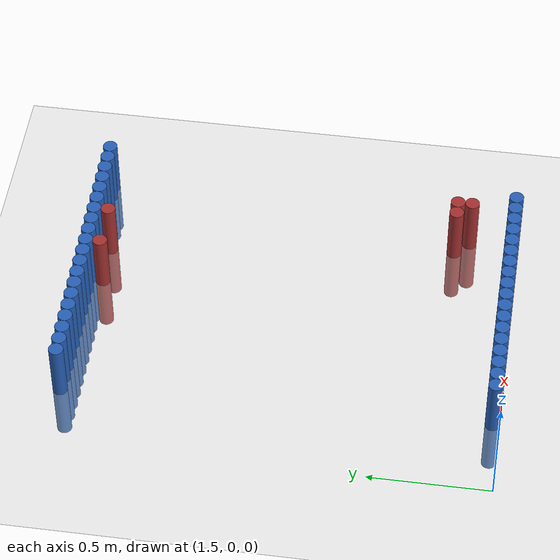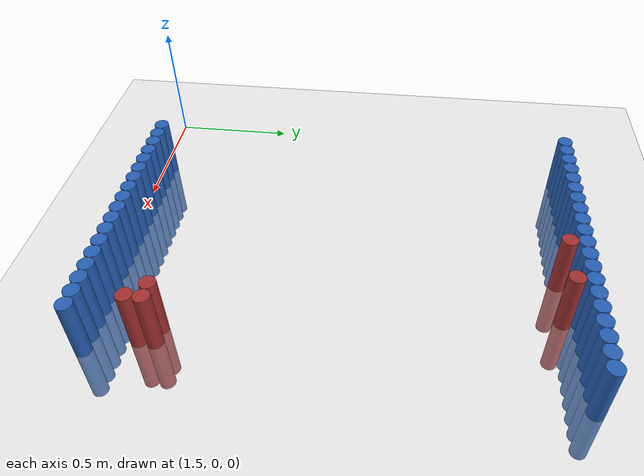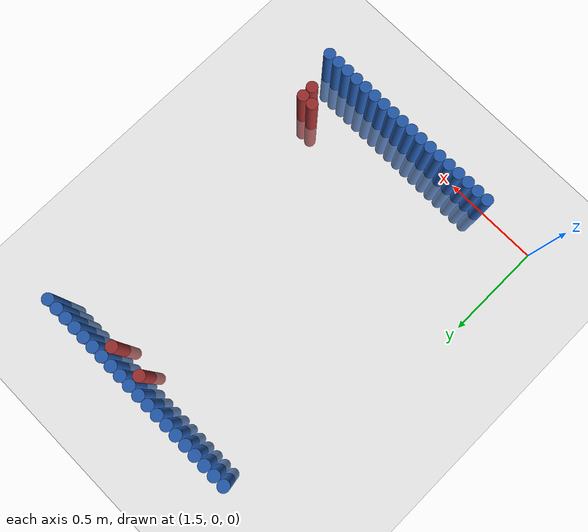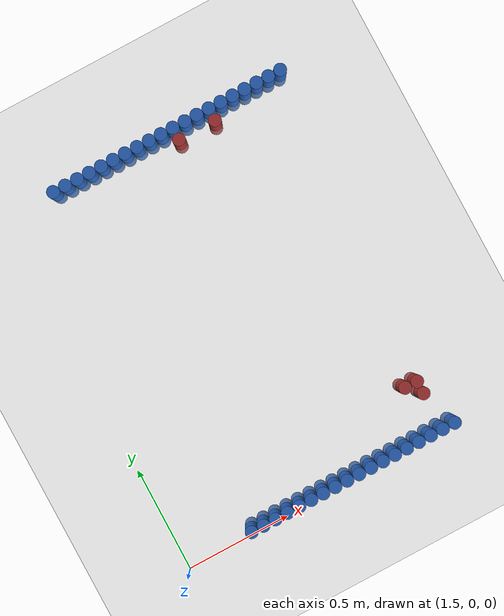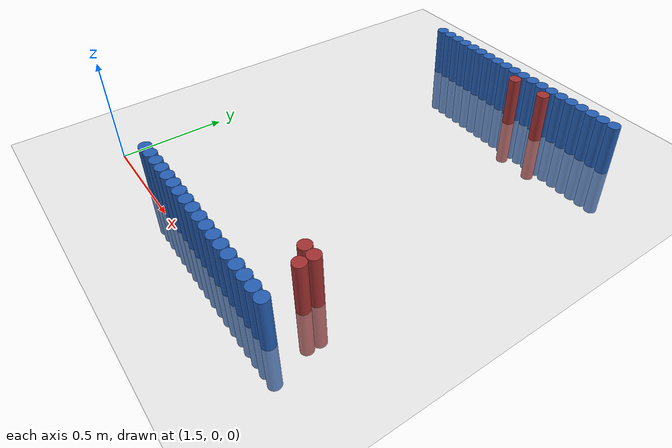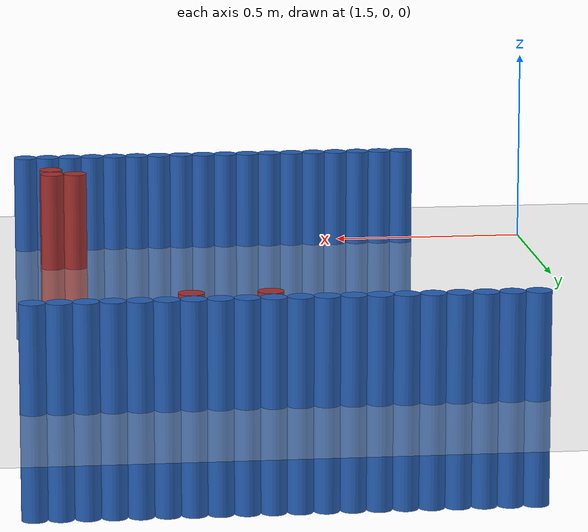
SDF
<sdf version="1.6">
 <world name="default">
  <model name="ground_plane">
   <static>1</static>
   <link name="link">
    <collision name="collision">
     <geometry><plane><normal>0 0 1</normal><size>100 100</size></plane></geometry>
     <surface><friction><ode><mu>100</mu><mu2>50</mu2></ode></friction></surface>
    </collision>
    <visual name="visual">
     <cast_shadows>0</cast_shadows>
     <geometry><plane><normal>0 0 1</normal><size>100 100</size></plane></geometry>
     <material>
      <script><uri>file://media/materials/scripts/gazebo.material</uri><name>Gazebo/Grey</name></script>
     </material>
    </visual>
   </link>
  </model>
  <model name="unit_cylinder_86">
   <static>1</static>
   <pose>1.770000 1.770000 0.000000 0.000000 0.000000 0.000000</pose>
   <link name="link">
    <inertial>
     <mass>1</mass>
     <inertia><ixx>0.145833</ixx><ixy>0</ixy><ixz>0</ixz><iyy>0.145833</iyy><iyz>0</iyz><izz>0.125</izz></inertia>
    </inertial>
    <collision name="collision">
     <geometry><cylinder><radius>0.030000</radius><length>0.5</length></cylinder></geometry>
    </collision>
    <visual name="visual">
     <geometry><cylinder><radius>0.030000</radius><length>0.5</length></cylinder></geometry>
     <material>
      <ambient>0.152000 0.379000 0.720000 1</ambient>
      <diffuse>0.152000 0.379000 0.720000 1</diffuse>
     </material>
     <material>
      <script><name>Gazebo/Grey</name><uri>file://media/materials/scripts/gazebo.material</uri></script>
     </material>
    </visual>
   </link>
  </model>
  <model name="unit_cylinder_87">
   <static>1</static>
   <pose>1.830000 0.030000 0.000000 0.000000 0.000000 0.000000</pose>
   <link name="link">
    <inertial>
     <mass>1</mass>
     <inertia><ixx>0.145833</ixx><ixy>0</ixy><ixz>0</ixz><iyy>0.145833</iyy><iyz>0</iyz><izz>0.125</izz></inertia>
    </inertial>
    <collision name="collision">
     <geometry><cylinder><radius>0.030000</radius><length>0.5</length></cylinder></geometry>
    </collision>
    <visual name="visual">
     <geometry><cylinder><radius>0.030000</radius><length>0.5</length></cylinder></geometry>
     <material>
      <ambient>0.152000 0.379000 0.720000 1</ambient>
      <diffuse>0.152000 0.379000 0.720000 1</diffuse>
     </material>
     <material>
      <script><name>Gazebo/Grey</name><uri>file://media/materials/scripts/gazebo.material</uri></script>
     </material>
    </visual>
   </link>
  </model>
  <model name="unit_cylinder_88">
   <static>1</static>
   <pose>1.830000 1.770000 0.000000 0.000000 0.000000 0.000000</pose>
   <link name="link">
    <inertial>
     <mass>1</mass>
     <inertia><ixx>0.145833</ixx><ixy>0</ixy><ixz>0</ixz><iyy>0.145833</iyy><iyz>0</iyz><izz>0.125</izz></inertia>
    </inertial>
    <collision name="collision">
     <geometry><cylinder><radius>0.030000</radius><length>0.5</length></cylinder></geometry>
    </collision>
    <visual name="visual">
     <geometry><cylinder><radius>0.030000</radius><length>0.5</length></cylinder></geometry>
     <material>
      <ambient>0.152000 0.379000 0.720000 1</ambient>
      <diffuse>0.152000 0.379000 0.720000 1</diffuse>
     </material>
     <material>
      <script><name>Gazebo/Grey</name><uri>file://media/materials/scripts/gazebo.material</uri></script>
     </material>
    </visual>
   </link>
  </model>
  <model name="unit_cylinder_89">
   <static>1</static>
   <pose>1.890000 0.030000 0.000000 0.000000 0.000000 0.000000</pose>
   <link name="link">
    <inertial>
     <mass>1</mass>
     <inertia><ixx>0.145833</ixx><ixy>0</ixy><ixz>0</ixz><iyy>0.145833</iyy><iyz>0</iyz><izz>0.125</izz></inertia>
    </inertial>
    <collision name="collision">
     <geometry><cylinder><radius>0.030000</radius><length>0.5</length></cylinder></geometry>
    </collision>
    <visual name="visual">
     <geometry><cylinder><radius>0.030000</radius><length>0.5</length></cylinder></geometry>
     <material>
      <ambient>0.152000 0.379000 0.720000 1</ambient>
      <diffuse>0.152000 0.379000 0.720000 1</diffuse>
     </material>
     <material>
      <script><name>Gazebo/Grey</name><uri>file://media/materials/scripts/gazebo.material</uri></script>
     </material>
    </visual>
   </link>
  </model>
  <model name="unit_cylinder_90">
   <static>1</static>
   <pose>1.890000 1.770000 0.000000 0.000000 0.000000 0.000000</pose>
   <link name="link">
    <inertial>
     <mass>1</mass>
     <inertia><ixx>0.145833</ixx><ixy>0</ixy><ixz>0</ixz><iyy>0.145833</iyy><iyz>0</iyz><izz>0.125</izz></inertia>
    </inertial>
    <collision name="collision">
     <geometry><cylinder><radius>0.030000</radius><length>0.5</length></cylinder></geometry>
    </collision>
    <visual name="visual">
     <geometry><cylinder><radius>0.030000</radius><length>0.5</length></cylinder></geometry>
     <material>
      <ambient>0.152000 0.379000 0.720000 1</ambient>
      <diffuse>0.152000 0.379000 0.720000 1</diffuse>
     </material>
     <material>
      <script><name>Gazebo/Grey</name><uri>file://media/materials/scripts/gazebo.material</uri></script>
     </material>
    </visual>
   </link>
  </model>
  <model name="unit_cylinder_91">
   <static>1</static>
   <pose>1.950000 0.030000 0.000000 0.000000 0.000000 0.000000</pose>
   <link name="link">
    <inertial>
     <mass>1</mass>
     <inertia><ixx>0.145833</ixx><ixy>0</ixy><ixz>0</ixz><iyy>0.145833</iyy><iyz>0</iyz><izz>0.125</izz></inertia>
    </inertial>
    <collision name="collision">
     <geometry><cylinder><radius>0.030000</radius><length>0.5</length></cylinder></geometry>
    </collision>
    <visual name="visual">
     <geometry><cylinder><radius>0.030000</radius><length>0.5</length></cylinder></geometry>
     <material>
      <ambient>0.152000 0.379000 0.720000 1</ambient>
      <diffuse>0.152000 0.379000 0.720000 1</diffuse>
     </material>
     <material>
      <script><name>Gazebo/Grey</name><uri>file://media/materials/scripts/gazebo.material</uri></script>
     </material>
    </visual>
   </link>
  </model>
  <model name="unit_cylinder_92">
   <static>1</static>
   <pose>1.950000 1.770000 0.000000 0.000000 0.000000 0.000000</pose>
   <link name="link">
    <inertial>
     <mass>1</mass>
     <inertia><ixx>0.145833</ixx><ixy>0</ixy><ixz>0</ixz><iyy>0.145833</iyy><iyz>0</iyz><izz>0.125</izz></inertia>
    </inertial>
    <collision name="collision">
     <geometry><cylinder><radius>0.030000</radius><length>0.5</length></cylinder></geometry>
    </collision>
    <visual name="visual">
     <geometry><cylinder><radius>0.030000</radius><length>0.5</length></cylinder></geometry>
     <material>
      <ambient>0.152000 0.379000 0.720000 1</ambient>
      <diffuse>0.152000 0.379000 0.720000 1</diffuse>
     </material>
     <material>
      <script><name>Gazebo/Grey</name><uri>file://media/materials/scripts/gazebo.material</uri></script>
     </material>
    </visual>
   </link>
  </model>
  <model name="unit_cylinder_93">
   <static>1</static>
   <pose>2.010000 0.030000 0.000000 0.000000 0.000000 0.000000</pose>
   <link name="link">
    <inertial>
     <mass>1</mass>
     <inertia><ixx>0.145833</ixx><ixy>0</ixy><ixz>0</ixz><iyy>0.145833</iyy><iyz>0</iyz><izz>0.125</izz></inertia>
    </inertial>
    <collision name="collision">
     <geometry><cylinder><radius>0.030000</radius><length>0.5</length></cylinder></geometry>
    </collision>
    <visual name="visual">
     <geometry><cylinder><radius>0.030000</radius><length>0.5</length></cylinder></geometry>
     <material>
      <ambient>0.152000 0.379000 0.720000 1</ambient>
      <diffuse>0.152000 0.379000 0.720000 1</diffuse>
     </material>
     <material>
      <script><name>Gazebo/Grey</name><uri>file://media/materials/scripts/gazebo.material</uri></script>
     </material>
    </visual>
   </link>
  </model>
  <model name="unit_cylinder_94">
   <static>1</static>
   <pose>2.010000 1.770000 0.000000 0.000000 0.000000 0.000000</pose>
   <link name="link">
    <inertial>
     <mass>1</mass>
     <inertia><ixx>0.145833</ixx><ixy>0</ixy><ixz>0</ixz><iyy>0.145833</iyy><iyz>0</iyz><izz>0.125</izz></inertia>
    </inertial>
    <collision name="collision">
     <geometry><cylinder><radius>0.030000</radius><length>0.5</length></cylinder></geometry>
    </collision>
    <visual name="visual">
     <geometry><cylinder><radius>0.030000</radius><length>0.5</length></cylinder></geometry>
     <material>
      <ambient>0.152000 0.379000 0.720000 1</ambient>
      <diffuse>0.152000 0.379000 0.720000 1</diffuse>
     </material>
     <material>
      <script><name>Gazebo/Grey</name><uri>file://media/materials/scripts/gazebo.material</uri></script>
     </material>
    </visual>
   </link>
  </model>
  <model name="unit_cylinder_95">
   <static>1</static>
   <pose>2.070000 1.770000 0.000000 0.000000 0.000000 0.000000</pose>
   <link name="link">
    <inertial>
     <mass>1</mass>
     <inertia><ixx>0.145833</ixx><ixy>0</ixy><ixz>0</ixz><iyy>0.145833</iyy><iyz>0</iyz><izz>0.125</izz></inertia>
    </inertial>
    <collision name="collision">
     <geometry><cylinder><radius>0.030000</radius><length>0.5</length></cylinder></geometry>
    </collision>
    <visual name="visual">
     <geometry><cylinder><radius>0.030000</radius><length>0.5</length></cylinder></geometry>
     <material>
      <ambient>0.152000 0.379000 0.720000 1</ambient>
      <diffuse>0.152000 0.379000 0.720000 1</diffuse>
     </material>
     <material>
      <script><name>Gazebo/Grey</name><uri>file://media/materials/scripts/gazebo.material</uri></script>
     </material>
    </visual>
   </link>
  </model>
  <model name="unit_cylinder_96">
   <static>1</static>
   <pose>2.130000 1.770000 0.000000 0.000000 0.000000 0.000000</pose>
   <link name="link">
    <inertial>
     <mass>1</mass>
     <inertia><ixx>0.145833</ixx><ixy>0</ixy><ixz>0</ixz><iyy>0.145833</iyy><iyz>0</iyz><izz>0.125</izz></inertia>
    </inertial>
    <collision name="collision">
     <geometry><cylinder><radius>0.030000</radius><length>0.5</length></cylinder></geometry>
    </collision>
    <visual name="visual">
     <geometry><cylinder><radius>0.030000</radius><length>0.5</length></cylinder></geometry>
     <material>
      <ambient>0.152000 0.379000 0.720000 1</ambient>
      <diffuse>0.152000 0.379000 0.720000 1</diffuse>
     </material>
     <material>
      <script><name>Gazebo/Grey</name><uri>file://media/materials/scripts/gazebo.material</uri></script>
     </material>
    </visual>
   </link>
  </model>
  <model name="unit_cylinder_97">
   <static>1</static>
   <pose>2.190000 1.770000 0.000000 0.000000 0.000000 0.000000</pose>
   <link name="link">
    <inertial>
     <mass>1</mass>
     <inertia><ixx>0.145833</ixx><ixy>0</ixy><ixz>0</ixz><iyy>0.145833</iyy><iyz>0</iyz><izz>0.125</izz></inertia>
    </inertial>
    <collision name="collision">
     <geometry><cylinder><radius>0.030000</radius><length>0.5</length></cylinder></geometry>
    </collision>
    <visual name="visual">
     <geometry><cylinder><radius>0.030000</radius><length>0.5</length></cylinder></geometry>
     <material>
      <ambient>0.152000 0.379000 0.720000 1</ambient>
      <diffuse>0.152000 0.379000 0.720000 1</diffuse>
     </material>
     <material>
      <script><name>Gazebo/Grey</name><uri>file://media/materials/scripts/gazebo.material</uri></script>
     </material>
    </visual>
   </link>
  </model>
  <model name="unit_cylinder_98">
   <static>1</static>
   <pose>2.250000 1.770000 0.000000 0.000000 0.000000 0.000000</pose>
   <link name="link">
    <inertial>
     <mass>1</mass>
     <inertia><ixx>0.145833</ixx><ixy>0</ixy><ixz>0</ixz><iyy>0.145833</iyy><iyz>0</iyz><izz>0.125</izz></inertia>
    </inertial>
    <collision name="collision">
     <geometry><cylinder><radius>0.030000</radius><length>0.5</length></cylinder></geometry>
    </collision>
    <visual name="visual">
     <geometry><cylinder><radius>0.030000</radius><length>0.5</length></cylinder></geometry>
     <material>
      <ambient>0.152000 0.379000 0.720000 1</ambient>
      <diffuse>0.152000 0.379000 0.720000 1</diffuse>
     </material>
     <material>
      <script><name>Gazebo/Grey</name><uri>file://media/materials/scripts/gazebo.material</uri></script>
     </material>
    </visual>
   </link>
  </model>
  <model name="unit_cylinder_99">
   <static>1</static>
   <pose>2.310000 1.770000 0.000000 0.000000 0.000000 0.000000</pose>
   <link name="link">
    <inertial>
     <mass>1</mass>
     <inertia><ixx>0.145833</ixx><ixy>0</ixy><ixz>0</ixz><iyy>0.145833</iyy><iyz>0</iyz><izz>0.125</izz></inertia>
    </inertial>
    <collision name="collision">
     <geometry><cylinder><radius>0.030000</radius><length>0.5</length></cylinder></geometry>
    </collision>
    <visual name="visual">
     <geometry><cylinder><radius>0.030000</radius><length>0.5</length></cylinder></geometry>
     <material>
      <ambient>0.152000 0.379000 0.720000 1</ambient>
      <diffuse>0.152000 0.379000 0.720000 1</diffuse>
     </material>
     <material>
      <script><name>Gazebo/Grey</name><uri>file://media/materials/scripts/gazebo.material</uri></script>
     </material>
    </visual>
   </link>
  </model>
  <model name="unit_cylinder_100">
   <static>1</static>
   <pose>2.370000 1.770000 0.000000 0.000000 0.000000 0.000000</pose>
   <link name="link">
    <inertial>
     <mass>1</mass>
     <inertia><ixx>0.145833</ixx><ixy>0</ixy><ixz>0</ixz><iyy>0.145833</iyy><iyz>0</iyz><izz>0.125</izz></inertia>
    </inertial>
    <collision name="collision">
     <geometry><cylinder><radius>0.030000</radius><length>0.5</length></cylinder></geometry>
    </collision>
    <visual name="visual">
     <geometry><cylinder><radius>0.030000</radius><length>0.5</length></cylinder></geometry>
     <material>
      <ambient>0.152000 0.379000 0.720000 1</ambient>
      <diffuse>0.152000 0.379000 0.720000 1</diffuse>
     </material>
     <material>
      <script><name>Gazebo/Grey</name><uri>file://media/materials/scripts/gazebo.material</uri></script>
     </material>
    </visual>
   </link>
  </model>
  <model name="unit_cylinder_101">
   <static>1</static>
   <pose>2.430000 1.770000 0.000000 0.000000 0.000000 0.000000</pose>
   <link name="link">
    <inertial>
     <mass>1</mass>
     <inertia><ixx>0.145833</ixx><ixy>0</ixy><ixz>0</ixz><iyy>0.145833</iyy><iyz>0</iyz><izz>0.125</izz></inertia>
    </inertial>
    <collision name="collision">
     <geometry><cylinder><radius>0.030000</radius><length>0.5</length></cylinder></geometry>
    </collision>
    <visual name="visual">
     <geometry><cylinder><radius>0.030000</radius><length>0.5</length></cylinder></geometry>
     <material>
      <ambient>0.152000 0.379000 0.720000 1</ambient>
      <diffuse>0.152000 0.379000 0.720000 1</diffuse>
     </material>
     <material>
      <script><name>Gazebo/Grey</name><uri>file://media/materials/scripts/gazebo.material</uri></script>
     </material>
    </visual>
   </link>
  </model>
  <model name="unit_cylinder_102">
   <static>1</static>
   <pose>2.490000 1.770000 0.000000 0.000000 0.000000 0.000000</pose>
   <link name="link">
    <inertial>
     <mass>1</mass>
     <inertia><ixx>0.145833</ixx><ixy>0</ixy><ixz>0</ixz><iyy>0.145833</iyy><iyz>0</iyz><izz>0.125</izz></inertia>
    </inertial>
    <collision name="collision">
     <geometry><cylinder><radius>0.030000</radius><length>0.5</length></cylinder></geometry>
    </collision>
    <visual name="visual">
     <geometry><cylinder><radius>0.030000</radius><length>0.5</length></cylinder></geometry>
     <material>
      <ambient>0.152000 0.379000 0.720000 1</ambient>
      <diffuse>0.152000 0.379000 0.720000 1</diffuse>
     </material>
     <material>
      <script><name>Gazebo/Grey</name><uri>file://media/materials/scripts/gazebo.material</uri></script>
     </material>
    </visual>
   </link>
  </model>
  <model name="unit_cylinder_103">
   <static>1</static>
   <pose>2.550000 1.770000 0.000000 0.000000 0.000000 0.000000</pose>
   <link name="link">
    <inertial>
     <mass>1</mass>
     <inertia><ixx>0.145833</ixx><ixy>0</ixy><ixz>0</ixz><iyy>0.145833</iyy><iyz>0</iyz><izz>0.125</izz></inertia>
    </inertial>
    <collision name="collision">
     <geometry><cylinder><radius>0.030000</radius><length>0.5</length></cylinder></geometry>
    </collision>
    <visual name="visual">
     <geometry><cylinder><radius>0.030000</radius><length>0.5</length></cylinder></geometry>
     <material>
      <ambient>0.152000 0.379000 0.720000 1</ambient>
      <diffuse>0.152000 0.379000 0.720000 1</diffuse>
     </material>
     <material>
      <script><name>Gazebo/Grey</name><uri>file://media/materials/scripts/gazebo.material</uri></script>
     </material>
    </visual>
   </link>
  </model>
  <model name="unit_cylinder_104">
   <static>1</static>
   <pose>2.610000 1.770000 0.000000 0.000000 0.000000 0.000000</pose>
   <link name="link">
    <inertial>
     <mass>1</mass>
     <inertia><ixx>0.145833</ixx><ixy>0</ixy><ixz>0</ixz><iyy>0.145833</iyy><iyz>0</iyz><izz>0.125</izz></inertia>
    </inertial>
    <collision name="collision">
     <geometry><cylinder><radius>0.030000</radius><length>0.5</length></cylinder></geometry>
    </collision>
    <visual name="visual">
     <geometry><cylinder><radius>0.030000</radius><length>0.5</length></cylinder></geometry>
     <material>
      <ambient>0.152000 0.379000 0.720000 1</ambient>
      <diffuse>0.152000 0.379000 0.720000 1</diffuse>
     </material>
     <material>
      <script><name>Gazebo/Grey</name><uri>file://media/materials/scripts/gazebo.material</uri></script>
     </material>
    </visual>
   </link>
  </model>
  <model name="unit_cylinder_105">
   <static>1</static>
   <pose>2.670000 1.770000 0.000000 0.000000 0.000000 0.000000</pose>
   <link name="link">
    <inertial>
     <mass>1</mass>
     <inertia><ixx>0.145833</ixx><ixy>0</ixy><ixz>0</ixz><iyy>0.145833</iyy><iyz>0</iyz><izz>0.125</izz></inertia>
    </inertial>
    <collision name="collision">
     <geometry><cylinder><radius>0.030000</radius><length>0.5</length></cylinder></geometry>
    </collision>
    <visual name="visual">
     <geometry><cylinder><radius>0.030000</radius><length>0.5</length></cylinder></geometry>
     <material>
      <ambient>0.152000 0.379000 0.720000 1</ambient>
      <diffuse>0.152000 0.379000 0.720000 1</diffuse>
     </material>
     <material>
      <script><name>Gazebo/Grey</name><uri>file://media/materials/scripts/gazebo.material</uri></script>
     </material>
    </visual>
   </link>
  </model>
  <model name="unit_cylinder_106">
   <static>1</static>
   <pose>2.730000 1.770000 0.000000 0.000000 0.000000 0.000000</pose>
   <link name="link">
    <inertial>
     <mass>1</mass>
     <inertia><ixx>0.145833</ixx><ixy>0</ixy><ixz>0</ixz><iyy>0.145833</iyy><iyz>0</iyz><izz>0.125</izz></inertia>
    </inertial>
    <collision name="collision">
     <geometry><cylinder><radius>0.030000</radius><length>0.5</length></cylinder></geometry>
    </collision>
    <visual name="visual">
     <geometry><cylinder><radius>0.030000</radius><length>0.5</length></cylinder></geometry>
     <material>
      <ambient>0.152000 0.379000 0.720000 1</ambient>
      <diffuse>0.152000 0.379000 0.720000 1</diffuse>
     </material>
     <material>
      <script><name>Gazebo/Grey</name><uri>file://media/materials/scripts/gazebo.material</uri></script>
     </material>
    </visual>
   </link>
  </model>
  <model name="unit_cylinder_107">
   <static>1</static>
   <pose>2.790000 1.770000 0.000000 0.000000 0.000000 0.000000</pose>
   <link name="link">
    <inertial>
     <mass>1</mass>
     <inertia><ixx>0.145833</ixx><ixy>0</ixy><ixz>0</ixz><iyy>0.145833</iyy><iyz>0</iyz><izz>0.125</izz></inertia>
    </inertial>
    <collision name="collision">
     <geometry><cylinder><radius>0.030000</radius><length>0.5</length></cylinder></geometry>
    </collision>
    <visual name="visual">
     <geometry><cylinder><radius>0.030000</radius><length>0.5</length></cylinder></geometry>
     <material>
      <ambient>0.152000 0.379000 0.720000 1</ambient>
      <diffuse>0.152000 0.379000 0.720000 1</diffuse>
     </material>
     <material>
      <script><name>Gazebo/Grey</name><uri>file://media/materials/scripts/gazebo.material</uri></script>
     </material>
    </visual>
   </link>
  </model>
  <model name="unit_cylinder_108">
   <static>1</static>
   <pose>2.850000 1.770000 0.000000 0.000000 0.000000 0.000000</pose>
   <link name="link">
    <inertial>
     <mass>1</mass>
     <inertia><ixx>0.145833</ixx><ixy>0</ixy><ixz>0</ixz><iyy>0.145833</iyy><iyz>0</iyz><izz>0.125</izz></inertia>
    </inertial>
    <collision name="collision">
     <geometry><cylinder><radius>0.030000</radius><length>0.5</length></cylinder></geometry>
    </collision>
    <visual name="visual">
     <geometry><cylinder><radius>0.030000</radius><length>0.5</length></cylinder></geometry>
     <material>
      <ambient>0.152000 0.379000 0.720000 1</ambient>
      <diffuse>0.152000 0.379000 0.720000 1</diffuse>
     </material>
     <material>
      <script><name>Gazebo/Grey</name><uri>file://media/materials/scripts/gazebo.material</uri></script>
     </material>
    </visual>
   </link>
  </model>
  <model name="unit_cylinder_109">
   <static>1</static>
   <pose>2.910000 1.770000 0.000000 0.000000 0.000000 0.000000</pose>
   <link name="link">
    <inertial>
     <mass>1</mass>
     <inertia><ixx>0.145833</ixx><ixy>0</ixy><ixz>0</ixz><iyy>0.145833</iyy><iyz>0</iyz><izz>0.125</izz></inertia>
    </inertial>
    <collision name="collision">
     <geometry><cylinder><radius>0.030000</radius><length>0.5</length></cylinder></geometry>
    </collision>
    <visual name="visual">
     <geometry><cylinder><radius>0.030000</radius><length>0.5</length></cylinder></geometry>
     <material>
      <ambient>0.152000 0.379000 0.720000 1</ambient>
      <diffuse>0.152000 0.379000 0.720000 1</diffuse>
     </material>
     <material>
      <script><name>Gazebo/Grey</name><uri>file://media/materials/scripts/gazebo.material</uri></script>
     </material>
    </visual>
   </link>
  </model>
  <model name="unit_cylinder_125">
   <static>1</static>
   <pose>2.370000 1.710000 0.000000 0.000000 0.000000 0.000000</pose>
   <link name="link">
    <inertial>
     <mass>1</mass>
     <inertia><ixx>0.145833</ixx><ixy>0</ixy><ixz>0</ixz><iyy>0.145833</iyy><iyz>0</iyz><izz>0.125</izz></inertia>
    </inertial>
    <collision name="collision">
     <geometry><cylinder><radius>0.030000</radius><length>0.5</length></cylinder></geometry>
    </collision>
    <visual name="visual">
     <geometry><cylinder><radius>0.030000</radius><length>0.5</length></cylinder></geometry>
     <material>
      <ambient>0.648000 0.192000 0.192000 1</ambient>
      <diffuse>0.648000 0.192000 0.192000 1</diffuse>
     </material>
     <material>
      <script><name>Gazebo/Grey</name><uri>file://media/materials/scripts/gazebo.material</uri></script>
     </material>
    </visual>
   </link>
  </model>
  <model name="unit_cylinder_126">
   <static>1</static>
   <pose>2.550000 1.710000 0.000000 0.000000 0.000000 0.000000</pose>
   <link name="link">
    <inertial>
     <mass>1</mass>
     <inertia><ixx>0.145833</ixx><ixy>0</ixy><ixz>0</ixz><iyy>0.145833</iyy><iyz>0</iyz><izz>0.125</izz></inertia>
    </inertial>
    <collision name="collision">
     <geometry><cylinder><radius>0.030000</radius><length>0.5</length></cylinder></geometry>
    </collision>
    <visual name="visual">
     <geometry><cylinder><radius>0.030000</radius><length>0.5</length></cylinder></geometry>
     <material>
      <ambient>0.648000 0.192000 0.192000 1</ambient>
      <diffuse>0.648000 0.192000 0.192000 1</diffuse>
     </material>
     <material>
      <script><name>Gazebo/Grey</name><uri>file://media/materials/scripts/gazebo.material</uri></script>
     </material>
    </visual>
   </link>
  </model>
  <model name="unit_cylinder_137">
   <static>1</static>
   <pose>2.730000 0.270000 0.000000 0.000000 0.000000 0.000000</pose>
   <link name="link">
    <inertial>
     <mass>1</mass>
     <inertia><ixx>0.145833</ixx><ixy>0</ixy><ixz>0</ixz><iyy>0.145833</iyy><iyz>0</iyz><izz>0.125</izz></inertia>
    </inertial>
    <collision name="collision">
     <geometry><cylinder><radius>0.030000</radius><length>0.5</length></cylinder></geometry>
    </collision>
    <visual name="visual">
     <geometry><cylinder><radius>0.030000</radius><length>0.5</length></cylinder></geometry>
     <material>
      <ambient>0.648000 0.192000 0.192000 1</ambient>
      <diffuse>0.648000 0.192000 0.192000 1</diffuse>
     </material>
     <material>
      <script><name>Gazebo/Grey</name><uri>file://media/materials/scripts/gazebo.material</uri></script>
     </material>
    </visual>
   </link>
  </model>
  <model name="unit_cylinder_138">
   <static>1</static>
   <pose>2.790000 0.270000 0.000000 0.000000 0.000000 0.000000</pose>
   <link name="link">
    <inertial>
     <mass>1</mass>
     <inertia><ixx>0.145833</ixx><ixy>0</ixy><ixz>0</ixz><iyy>0.145833</iyy><iyz>0</iyz><izz>0.125</izz></inertia>
    </inertial>
    <collision name="collision">
     <geometry><cylinder><radius>0.030000</radius><length>0.5</length></cylinder></geometry>
    </collision>
    <visual name="visual">
     <geometry><cylinder><radius>0.030000</radius><length>0.5</length></cylinder></geometry>
     <material>
      <ambient>0.648000 0.192000 0.192000 1</ambient>
      <diffuse>0.648000 0.192000 0.192000 1</diffuse>
     </material>
     <material>
      <script><name>Gazebo/Grey</name><uri>file://media/materials/scripts/gazebo.material</uri></script>
     </material>
    </visual>
   </link>
  </model>
  <model name="unit_cylinder_139">
   <static>1</static>
   <pose>2.790000 0.210000 0.000000 0.000000 0.000000 0.000000</pose>
   <link name="link">
    <inertial>
     <mass>1</mass>
     <inertia><ixx>0.145833</ixx><ixy>0</ixy><ixz>0</ixz><iyy>0.145833</iyy><iyz>0</iyz><izz>0.125</izz></inertia>
    </inertial>
    <collision name="collision">
     <geometry><cylinder><radius>0.030000</radius><length>0.5</length></cylinder></geometry>
    </collision>
    <visual name="visual">
     <geometry><cylinder><radius>0.030000</radius><length>0.5</length></cylinder></geometry>
     <material>
      <ambient>0.648000 0.192000 0.192000 1</ambient>
      <diffuse>0.648000 0.192000 0.192000 1</diffuse>
     </material>
     <material>
      <script><name>Gazebo/Grey</name><uri>file://media/materials/scripts/gazebo.material</uri></script>
     </material>
    </visual>
   </link>
  </model>
  <model name="unit_cylinder_142">
   <static>1</static>
   <pose>2.070000 0.030000 0.000000 0.000000 0.000000 0.000000</pose>
   <link name="link">
    <inertial>
     <mass>1</mass>
     <inertia><ixx>0.145833</ixx><ixy>0</ixy><ixz>0</ixz><iyy>0.145833</iyy><iyz>0</iyz><izz>0.125</izz></inertia>
    </inertial>
    <collision name="collision">
     <geometry><cylinder><radius>0.030000</radius><length>0.5</length></cylinder></geometry>
    </collision>
    <visual name="visual">
     <geometry><cylinder><radius>0.030000</radius><length>0.5</length></cylinder></geometry>
     <material>
      <ambient>0.152000 0.379000 0.720000 1</ambient>
      <diffuse>0.152000 0.379000 0.720000 1</diffuse>
     </material>
     <material>
      <script><name>Gazebo/Grey</name><uri>file://media/materials/scripts/gazebo.material</uri></script>
     </material>
    </visual>
   </link>
  </model>
  <model name="unit_cylinder_143">
   <static>1</static>
   <pose>2.130000 0.030000 0.000000 0.000000 0.000000 0.000000</pose>
   <link name="link">
    <inertial>
     <mass>1</mass>
     <inertia><ixx>0.145833</ixx><ixy>0</ixy><ixz>0</ixz><iyy>0.145833</iyy><iyz>0</iyz><izz>0.125</izz></inertia>
    </inertial>
    <collision name="collision">
     <geometry><cylinder><radius>0.030000</radius><length>0.5</length></cylinder></geometry>
    </collision>
    <visual name="visual">
     <geometry><cylinder><radius>0.030000</radius><length>0.5</length></cylinder></geometry>
     <material>
      <ambient>0.152000 0.379000 0.720000 1</ambient>
      <diffuse>0.152000 0.379000 0.720000 1</diffuse>
     </material>
     <material>
      <script><name>Gazebo/Grey</name><uri>file://media/materials/scripts/gazebo.material</uri></script>
     </material>
    </visual>
   </link>
  </model>
  <model name="unit_cylinder_144">
   <static>1</static>
   <pose>2.190000 0.030000 0.000000 0.000000 0.000000 0.000000</pose>
   <link name="link">
    <inertial>
     <mass>1</mass>
     <inertia><ixx>0.145833</ixx><ixy>0</ixy><ixz>0</ixz><iyy>0.145833</iyy><iyz>0</iyz><izz>0.125</izz></inertia>
    </inertial>
    <collision name="collision">
     <geometry><cylinder><radius>0.030000</radius><length>0.5</length></cylinder></geometry>
    </collision>
    <visual name="visual">
     <geometry><cylinder><radius>0.030000</radius><length>0.5</length></cylinder></geometry>
     <material>
      <ambient>0.152000 0.379000 0.720000 1</ambient>
      <diffuse>0.152000 0.379000 0.720000 1</diffuse>
     </material>
     <material>
      <script><name>Gazebo/Grey</name><uri>file://media/materials/scripts/gazebo.material</uri></script>
     </material>
    </visual>
   </link>
  </model>
  <model name="unit_cylinder_145">
   <static>1</static>
   <pose>2.250000 0.030000 0.000000 0.000000 0.000000 0.000000</pose>
   <link name="link">
    <inertial>
     <mass>1</mass>
     <inertia><ixx>0.145833</ixx><ixy>0</ixy><ixz>0</ixz><iyy>0.145833</iyy><iyz>0</iyz><izz>0.125</izz></inertia>
    </inertial>
    <collision name="collision">
     <geometry><cylinder><radius>0.030000</radius><length>0.5</length></cylinder></geometry>
    </collision>
    <visual name="visual">
     <geometry><cylinder><radius>0.030000</radius><length>0.5</length></cylinder></geometry>
     <material>
      <ambient>0.152000 0.379000 0.720000 1</ambient>
      <diffuse>0.152000 0.379000 0.720000 1</diffuse>
     </material>
     <material>
      <script><name>Gazebo/Grey</name><uri>file://media/materials/scripts/gazebo.material</uri></script>
     </material>
    </visual>
   </link>
  </model>
  <model name="unit_cylinder_146">
   <static>1</static>
   <pose>2.310000 0.030000 0.000000 0.000000 0.000000 0.000000</pose>
   <link name="link">
    <inertial>
     <mass>1</mass>
     <inertia><ixx>0.145833</ixx><ixy>0</ixy><ixz>0</ixz><iyy>0.145833</iyy><iyz>0</iyz><izz>0.125</izz></inertia>
    </inertial>
    <collision name="collision">
     <geometry><cylinder><radius>0.030000</radius><length>0.5</length></cylinder></geometry>
    </collision>
    <visual name="visual">
     <geometry><cylinder><radius>0.030000</radius><length>0.5</length></cylinder></geometry>
     <material>
      <ambient>0.152000 0.379000 0.720000 1</ambient>
      <diffuse>0.152000 0.379000 0.720000 1</diffuse>
     </material>
     <material>
      <script><name>Gazebo/Grey</name><uri>file://media/materials/scripts/gazebo.material</uri></script>
     </material>
    </visual>
   </link>
  </model>
  <model name="unit_cylinder_147">
   <static>1</static>
   <pose>2.370000 0.030000 0.000000 0.000000 0.000000 0.000000</pose>
   <link name="link">
    <inertial>
     <mass>1</mass>
     <inertia><ixx>0.145833</ixx><ixy>0</ixy><ixz>0</ixz><iyy>0.145833</iyy><iyz>0</iyz><izz>0.125</izz></inertia>
    </inertial>
    <collision name="collision">
     <geometry><cylinder><radius>0.030000</radius><length>0.5</length></cylinder></geometry>
    </collision>
    <visual name="visual">
     <geometry><cylinder><radius>0.030000</radius><length>0.5</length></cylinder></geometry>
     <material>
      <ambient>0.152000 0.379000 0.720000 1</ambient>
      <diffuse>0.152000 0.379000 0.720000 1</diffuse>
     </material>
     <material>
      <script><name>Gazebo/Grey</name><uri>file://media/materials/scripts/gazebo.material</uri></script>
     </material>
    </visual>
   </link>
  </model>
  <model name="unit_cylinder_148">
   <static>1</static>
   <pose>2.430000 0.030000 0.000000 0.000000 0.000000 0.000000</pose>
   <link name="link">
    <inertial>
     <mass>1</mass>
     <inertia><ixx>0.145833</ixx><ixy>0</ixy><ixz>0</ixz><iyy>0.145833</iyy><iyz>0</iyz><izz>0.125</izz></inertia>
    </inertial>
    <collision name="collision">
     <geometry><cylinder><radius>0.030000</radius><length>0.5</length></cylinder></geometry>
    </collision>
    <visual name="visual">
     <geometry><cylinder><radius>0.030000</radius><length>0.5</length></cylinder></geometry>
     <material>
      <ambient>0.152000 0.379000 0.720000 1</ambient>
      <diffuse>0.152000 0.379000 0.720000 1</diffuse>
     </material>
     <material>
      <script><name>Gazebo/Grey</name><uri>file://media/materials/scripts/gazebo.material</uri></script>
     </material>
    </visual>
   </link>
  </model>
  <model name="unit_cylinder_149">
   <static>1</static>
   <pose>2.490000 0.030000 0.000000 0.000000 0.000000 0.000000</pose>
   <link name="link">
    <inertial>
     <mass>1</mass>
     <inertia><ixx>0.145833</ixx><ixy>0</ixy><ixz>0</ixz><iyy>0.145833</iyy><iyz>0</iyz><izz>0.125</izz></inertia>
    </inertial>
    <collision name="collision">
     <geometry><cylinder><radius>0.030000</radius><length>0.5</length></cylinder></geometry>
    </collision>
    <visual name="visual">
     <geometry><cylinder><radius>0.030000</radius><length>0.5</length></cylinder></geometry>
     <material>
      <ambient>0.152000 0.379000 0.720000 1</ambient>
      <diffuse>0.152000 0.379000 0.720000 1</diffuse>
     </material>
     <material>
      <script><name>Gazebo/Grey</name><uri>file://media/materials/scripts/gazebo.material</uri></script>
     </material>
    </visual>
   </link>
  </model>
  <model name="unit_cylinder_150">
   <static>1</static>
   <pose>2.550000 0.030000 0.000000 0.000000 0.000000 0.000000</pose>
   <link name="link">
    <inertial>
     <mass>1</mass>
     <inertia><ixx>0.145833</ixx><ixy>0</ixy><ixz>0</ixz><iyy>0.145833</iyy><iyz>0</iyz><izz>0.125</izz></inertia>
    </inertial>
    <collision name="collision">
     <geometry><cylinder><radius>0.030000</radius><length>0.5</length></cylinder></geometry>
    </collision>
    <visual name="visual">
     <geometry><cylinder><radius>0.030000</radius><length>0.5</length></cylinder></geometry>
     <material>
      <ambient>0.152000 0.379000 0.720000 1</ambient>
      <diffuse>0.152000 0.379000 0.720000 1</diffuse>
     </material>
     <material>
      <script><name>Gazebo/Grey</name><uri>file://media/materials/scripts/gazebo.material</uri></script>
     </material>
    </visual>
   </link>
  </model>
  <model name="unit_cylinder_151">
   <static>1</static>
   <pose>2.610000 0.030000 0.000000 0.000000 0.000000 0.000000</pose>
   <link name="link">
    <inertial>
     <mass>1</mass>
     <inertia><ixx>0.145833</ixx><ixy>0</ixy><ixz>0</ixz><iyy>0.145833</iyy><iyz>0</iyz><izz>0.125</izz></inertia>
    </inertial>
    <collision name="collision">
     <geometry><cylinder><radius>0.030000</radius><length>0.5</length></cylinder></geometry>
    </collision>
    <visual name="visual">
     <geometry><cylinder><radius>0.030000</radius><length>0.5</length></cylinder></geometry>
     <material>
      <ambient>0.152000 0.379000 0.720000 1</ambient>
      <diffuse>0.152000 0.379000 0.720000 1</diffuse>
     </material>
     <material>
      <script><name>Gazebo/Grey</name><uri>file://media/materials/scripts/gazebo.material</uri></script>
     </material>
    </visual>
   </link>
  </model>
  <model name="unit_cylinder_152">
   <static>1</static>
   <pose>2.670000 0.030000 0.000000 0.000000 0.000000 0.000000</pose>
   <link name="link">
    <inertial>
     <mass>1</mass>
     <inertia><ixx>0.145833</ixx><ixy>0</ixy><ixz>0</ixz><iyy>0.145833</iyy><iyz>0</iyz><izz>0.125</izz></inertia>
    </inertial>
    <collision name="collision">
     <geometry><cylinder><radius>0.030000</radius><length>0.5</length></cylinder></geometry>
    </collision>
    <visual name="visual">
     <geometry><cylinder><radius>0.030000</radius><length>0.5</length></cylinder></geometry>
     <material>
      <ambient>0.152000 0.379000 0.720000 1</ambient>
      <diffuse>0.152000 0.379000 0.720000 1</diffuse>
     </material>
     <material>
      <script><name>Gazebo/Grey</name><uri>file://media/materials/scripts/gazebo.material</uri></script>
     </material>
    </visual>
   </link>
  </model>
  <model name="unit_cylinder_153">
   <static>1</static>
   <pose>2.730000 0.030000 0.000000 0.000000 0.000000 0.000000</pose>
   <link name="link">
    <inertial>
     <mass>1</mass>
     <inertia><ixx>0.145833</ixx><ixy>0</ixy><ixz>0</ixz><iyy>0.145833</iyy><iyz>0</iyz><izz>0.125</izz></inertia>
    </inertial>
    <collision name="collision">
     <geometry><cylinder><radius>0.030000</radius><length>0.5</length></cylinder></geometry>
    </collision>
    <visual name="visual">
     <geometry><cylinder><radius>0.030000</radius><length>0.5</length></cylinder></geometry>
     <material>
      <ambient>0.152000 0.379000 0.720000 1</ambient>
      <diffuse>0.152000 0.379000 0.720000 1</diffuse>
     </material>
     <material>
      <script><name>Gazebo/Grey</name><uri>file://media/materials/scripts/gazebo.material</uri></script>
     </material>
    </visual>
   </link>
  </model>
  <model name="unit_cylinder_154">
   <static>1</static>
   <pose>2.790000 0.030000 0.000000 0.000000 0.000000 0.000000</pose>
   <link name="link">
    <inertial>
     <mass>1</mass>
     <inertia><ixx>0.145833</ixx><ixy>0</ixy><ixz>0</ixz><iyy>0.145833</iyy><iyz>0</iyz><izz>0.125</izz></inertia>
    </inertial>
    <collision name="collision">
     <geometry><cylinder><radius>0.030000</radius><length>0.5</length></cylinder></geometry>
    </collision>
    <visual name="visual">
     <geometry><cylinder><radius>0.030000</radius><length>0.5</length></cylinder></geometry>
     <material>
      <ambient>0.152000 0.379000 0.720000 1</ambient>
      <diffuse>0.152000 0.379000 0.720000 1</diffuse>
     </material>
     <material>
      <script><name>Gazebo/Grey</name><uri>file://media/materials/scripts/gazebo.material</uri></script>
     </material>
    </visual>
   </link>
  </model>
  <model name="unit_cylinder_155">
   <static>1</static>
   <pose>2.850000 0.030000 0.000000 0.000000 0.000000 0.000000</pose>
   <link name="link">
    <inertial>
     <mass>1</mass>
     <inertia><ixx>0.145833</ixx><ixy>0</ixy><ixz>0</ixz><iyy>0.145833</iyy><iyz>0</iyz><izz>0.125</izz></inertia>
    </inertial>
    <collision name="collision">
     <geometry><cylinder><radius>0.030000</radius><length>0.5</length></cylinder></geometry>
    </collision>
    <visual name="visual">
     <geometry><cylinder><radius>0.030000</radius><length>0.5</length></cylinder></geometry>
     <material>
      <ambient>0.152000 0.379000 0.720000 1</ambient>
      <diffuse>0.152000 0.379000 0.720000 1</diffuse>
     </material>
     <material>
      <script><name>Gazebo/Grey</name><uri>file://media/materials/scripts/gazebo.material</uri></script>
     </material>
    </visual>
   </link>
  </model>
 </world>
</sdf>
